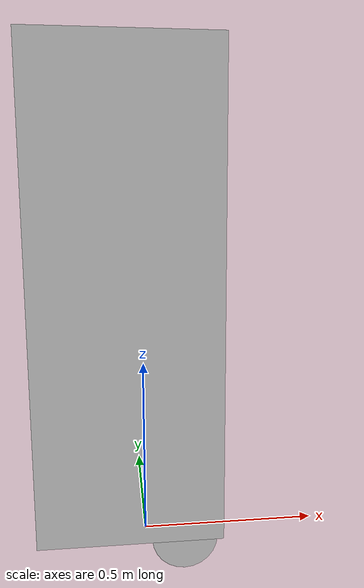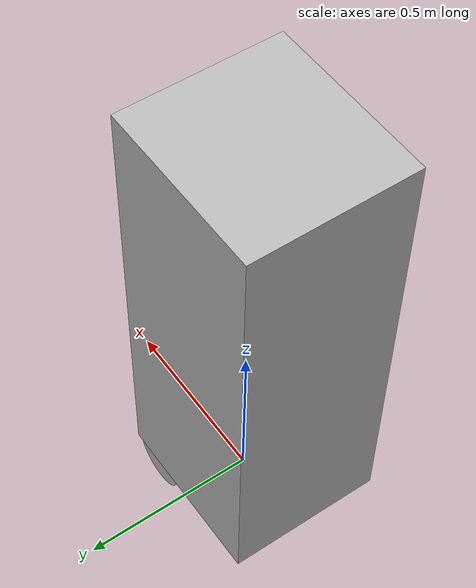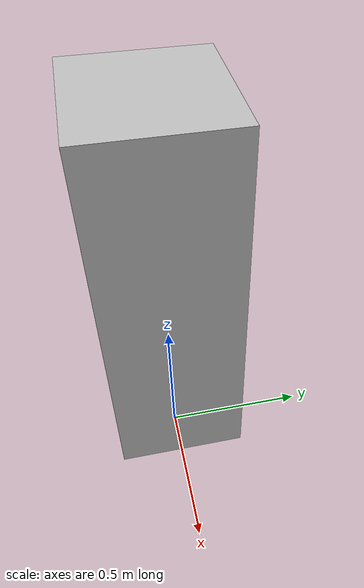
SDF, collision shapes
<sdf version='1.11'>
  <model name='sitoe_robot'>
    <link name='base_footprint'>
      <inertial>
        <pose>-0.0039948586118251656 0.10122107969151679 0.054970179948586127 0 0 0</pose>
        <mass>15.56</mass>
        <inertia>
          <ixx>0.54770769354102389</ixx>
          <ixy>-0.0062919023136241798</ixy>
          <ixz>-0.0010486503856041141</ixz>
          <iyy>2.3240014711438519</iyy>
          <iyz>-0.00099196658097683299</iyz>
          <izz>2.2808786229745501</izz>
        </inertia>
      </inertial>
      <collision name='base_footprint_fixed_joint_lump__base_link_collision'>
        <pose>-0.045434099999999998 6.9388939039072284e-18 0.71347000000000005 1.5707963267948959 -5.5511151231257827e-17 1.5707963267948959</pose>
        <geometry>
          <box>
            <size>0.44369999999999998 1.2714000000000001 0.48580000000000001</size>
          </box>
        </geometry>
      </collision>
      <collision name='base_footprint_fixed_joint_lump__caster_wheel_link_collision_1'>
        <pose>-0.13300000000000001 2.775557561562891e-17 0.0407 0 0 0</pose>
        <geometry>
          <sphere>
            <radius>0.050799999999999998</radius>
          </sphere>
        </geometry>
      </collision>
      <collision name='base_footprint_fixed_joint_lump__lidar_link_collision_2'>
        <pose>-0.021000000000000001 3.4694469519536142e-18 0.058749999999999997 0 0 0</pose>
        <geometry>
          <cylinder>
            <length>0.041300000000000003</length>
            <radius>0.027799999999999998</radius>
          </cylinder>
        </geometry>
        <surface>
          <contact>
            <ode/>
          </contact>
          <friction>
            <ode/>
          </friction>
        </surface>
      </collision>
      <visual name='base_footprint_fixed_joint_lump__base_link_visual'>
        <pose>0 0 0.038100000000000002 1.5707963267948959 -5.5511151231257827e-17 1.5707963267948959</pose>
        <geometry>
          <mesh>
            <scale>1 1 1</scale>
            <uri>model://parc_robot_description/meshes/sitoe_chassis.dae</uri>
          </mesh>
        </geometry>
      </visual>
      <visual name='base_footprint_fixed_joint_lump__bottom_camera_link_visual_1'>
        <pose>-0.0009486372867090892 5.5619571448506377e-17 0.03811100016133815 1.5707963267948957 0 1.570796326794897</pose>
        <geometry>
          <mesh>
            <scale>1 1 1</scale>
            <uri>model://parc_robot_description/meshes/realsense_d435_bottom.dae</uri>
          </mesh>
        </geometry>
      </visual>
      <visual name='base_footprint_fixed_joint_lump__caster_wheel_link_visual_2'>
        <pose>6.1629758220391547e-33 2.775557561562891e-17 0.038100000000000002 1.5707963267948959 -5.5511151231257827e-17 1.5707963267948959</pose>
        <geometry>
          <mesh>
            <scale>1 1 1</scale>
            <uri>model://parc_robot_description/meshes/caster_wheel.dae</uri>
          </mesh>
        </geometry>
      </visual>
      <visual name='base_footprint_fixed_joint_lump__lidar_link_visual_3'>
        <pose>-0.021000000000000001 -0.021000000000000001 0.038100000000000002 1.5707963267948959 0 0</pose>
        <geometry>
          <mesh>
            <scale>1 1 1</scale>
            <uri>model://parc_robot_description/meshes/rplidarc1.dae</uri>
          </mesh>
        </geometry>
      </visual>
      <visual name='base_footprint_fixed_joint_lump__top_camera_link_visual_4'>
        <pose>-6.9388939039072253e-18 1.387778780781446e-17 0.038100000000000002 1.5707963267948959 -5.5511151231257827e-17 1.5707963267948959</pose>
        <geometry>
          <mesh>
            <scale>1 1 1</scale>
            <uri>model://parc_robot_description/meshes/realsense_d435_top.dae</uri>
          </mesh>
        </geometry>
      </visual>
      <sensor name='imu_sensor' type='imu'>
        <always_on>true</always_on>
        <update_rate>100</update_rate>
        <visualize>true</visualize>
        <topic>imu</topic>
        <imu>
          <angular_velocity>
            <x>
              <noise type='gaussian'>
                <mean>0</mean>
                <stddev>0.00020000000000000001</stddev>
              </noise>
            </x>
            <y>
              <noise type='gaussian'>
                <mean>0</mean>
                <stddev>0.00020000000000000001</stddev>
              </noise>
            </y>
            <z>
              <noise type='gaussian'>
                <mean>0</mean>
                <stddev>0.00020000000000000001</stddev>
              </noise>
            </z>
          </angular_velocity>
          <linear_acceleration>
            <x>
              <noise type='gaussian'>
                <mean>0</mean>
                <stddev>0.017000000000000001</stddev>
              </noise>
            </x>
            <y>
              <noise type='gaussian'>
                <mean>0</mean>
                <stddev>0.017000000000000001</stddev>
              </noise>
            </y>
            <z>
              <noise type='gaussian'>
                <mean>0</mean>
                <stddev>0.017000000000000001</stddev>
              </noise>
            </z>
          </linear_acceleration>
          <orientation>
            <x>
              <noise type='gaussian'>
                <mean>0.0</mean>
                <stddev>2e-3</stddev>
              </noise>
            </x>
            <y>
              <noise type='gaussian'>
                <mean>0.0</mean>
                <stddev>2e-3</stddev>
              </noise>
            </y>
            <z>
              <noise type='gaussian'>
                <mean>0.0</mean>
                <stddev>2e-3</stddev>
              </noise>
            </z>
          </orientation>
        </imu>
        <pose>0.02 -3.4694499999999997e-18 0.092100000000000001 0 0 -3.6732099999999997e-06</pose>
        <gravity>true</gravity>
        <gz_frame_id>imu_link</gz_frame_id>
      </sensor>
      <sensor name='rplidar_c1' type='gpu_lidar'>
        <always_on>true</always_on>
        <visualize>false</visualize>
        <update_rate>10</update_rate>
        <topic>scan</topic>
        <ray>
          <scan>
            <horizontal>
              <samples>360</samples>
              <min_angle>-3.1400000000000001</min_angle>
              <max_angle>3.1400000000000001</max_angle>
              <resolution>1</resolution>
            </horizontal>
          </scan>
          <range>
            <min>0.050000000000000003</min>
            <max>12</max>
            <resolution>0.014999999999999999</resolution>
          </range>
          <noise>
            <type>gaussian</type>
            <mean>0</mean>
            <stddev>0.01</stddev>
          </noise>
        </ray>
        <pose>-0.021000000000000001 3.4694499999999997e-18 0.038100000000000002 0 0 -3.6732099999999997e-06</pose>
        <gz_frame_id>lidar_link</gz_frame_id>
      </sensor>
    </link>
    <joint name='left_wheel_joint' type='revolute'>
      <pose relative_to='base_footprint'>0.095000000000000057 0.19649 0.085699999999999998 1.5707963267948957 -1.5707963267948966 0</pose>
      <parent>base_footprint</parent>
      <child>left_wheel_link</child>
      <axis>
        <xyz>0 0 -1</xyz>
        <limit>
          <lower>-inf</lower>
          <upper>inf</upper>
        </limit>
        <dynamics>
          <spring_reference>0</spring_reference>
          <spring_stiffness>0</spring_stiffness>
        </dynamics>
      </axis>
    </joint>
    <link name='left_wheel_link'>
      <pose relative_to='left_wheel_joint'>0 0 0 0 0 0</pose>
      <inertial>
        <pose>0 0 0 0 0 0</pose>
        <mass>2.2000000000000002</mass>
        <inertia>
          <ixx>0.0044324793333333336</ixx>
          <ixy>0</ixy>
          <ixz>0</ixz>
          <iyy>0.0044324793333333336</iyy>
          <iyz>0</iyz>
          <izz>0.0081355999999999998</izz>
        </inertia>
      </inertial>
      <collision name='left_wheel_link_collision'>
        <pose>0 0 0 0 0 0</pose>
        <geometry>
          <cylinder>
            <length>0.044600000000000001</length>
            <radius>0.085999999999999993</radius>
          </cylinder>
        </geometry>
      </collision>
      <visual name='left_wheel_link_visual'>
        <pose>-0.0935 -0.043999999999999997 0.19650000000000001 0 1.5707963267948966 0</pose>
        <geometry>
          <mesh>
            <scale>1 1 1</scale>
            <uri>model://parc_robot_description/meshes/left_wheel.dae</uri>
          </mesh>
        </geometry>
      </visual>
    </link>
    <joint name='right_wheel_joint' type='revolute'>
      <pose relative_to='base_footprint'>0.094499999999999973 -0.19649 0.085699999999999998 -1.5707963267948957 1.5707963267948966 0</pose>
      <parent>base_footprint</parent>
      <child>right_wheel_link</child>
      <axis>
        <xyz>0 0 1</xyz>
        <limit>
          <lower>-inf</lower>
          <upper>inf</upper>
        </limit>
        <dynamics>
          <spring_reference>0</spring_reference>
          <spring_stiffness>0</spring_stiffness>
        </dynamics>
      </axis>
    </joint>
    <link name='right_wheel_link'>
      <pose relative_to='right_wheel_joint'>0 0 0 0 0 0</pose>
      <inertial>
        <pose>0 0 0 0 0 0</pose>
        <mass>2.2000000000000002</mass>
        <inertia>
          <ixx>0.0044324793333333336</ixx>
          <ixy>0</ixy>
          <ixz>0</ixz>
          <iyy>0.0044324793333333336</iyy>
          <iyz>0</iyz>
          <izz>0.0081355999999999998</izz>
        </inertia>
      </inertial>
      <collision name='right_wheel_link_collision'>
        <pose>0 0 0 0 0 0</pose>
        <geometry>
          <cylinder>
            <length>0.044600000000000001</length>
            <radius>0.085999999999999993</radius>
          </cylinder>
        </geometry>
      </collision>
      <visual name='right_wheel_link_visual'>
        <pose>0.095600000000000004 -0.043499999999999997 0.19650000000000001 0 -1.5707963267948966 0</pose>
        <geometry>
          <mesh>
            <scale>1 1 1</scale>
            <uri>model://parc_robot_description/meshes/right_wheel.dae</uri>
          </mesh>
        </geometry>
      </visual>
    </link>
    <plugin name='gz::sim::systems::DiffDrive' filename='gz-sim-diff-drive-system'>
      <topic>/cmd_vel</topic>
      <left_joint>left_wheel_joint</left_joint>
      <right_joint>right_wheel_joint</right_joint>
      <wheel_separation>0.3409</wheel_separation>
      <wheel_radius>0.08565</wheel_radius>
      <max_velocity>1.0</max_velocity>
      <max_linear_acceleration>1</max_linear_acceleration>
      <min_linear_acceleration>-1</min_linear_acceleration>
      <max_angular_acceleration>2</max_angular_acceleration>
      <min_angular_acceleration>-2</min_angular_acceleration>
      <max_linear_velocity>1.5</max_linear_velocity>
      <min_linear_velocity>-1.5</min_linear_velocity>
      <max_angular_velocity>1</max_angular_velocity>
      <min_angular_velocity>-1</min_angular_velocity>
      <odom_topic>odom</odom_topic>
      <tf_topic>tf</tf_topic>
      <frame_id>odom</frame_id>
      <child_frame_id>base_footprint</child_frame_id>
      <odom_publish_frequency>30</odom_publish_frequency>
    </plugin>
    <plugin name='gz::sim::systems::JointStatePublisher' filename='gz-sim-joint-state-publisher-system'>
      <topic>joint_states</topic>
      <joint_name>left_wheel_joint</joint_name>
      <joint_name>right_wheel_joint</joint_name>
    </plugin>
    <plugin name='gz::sim::systems::PosePublisher' filename='gz-sim-pose-publisher-system'>
      <publish_link_pose>false</publish_link_pose>
      <publish_model_pose>true</publish_model_pose>
      <publish_nested_model_pose>false</publish_nested_model_pose>
      <use_pose_vector_msg>false</use_pose_vector_msg>
      <update_frequency>10</update_frequency>
    </plugin>
    <frame name='bottom_camera_color_optical_joint' attached_to='bottom_camera_color_frame'>
      <pose>0 0 0 -1.5707963267948959 -5.5511151231257827e-17 -1.5707963267948959</pose>
    </frame>
    <frame name='bottom_camera_color_optical_frame' attached_to='bottom_camera_color_optical_joint'>
      <pose>0 0 0 0 0 0</pose>
    </frame>
    <frame name='bottom_camera_color_joint' attached_to='bottom_camera_link'>
      <pose>0 0.014999999999999999 0 0 0 0</pose>
    </frame>
    <frame name='bottom_camera_color_frame' attached_to='bottom_camera_color_joint'>
      <pose>0 0 0 0 0 0</pose>
    </frame>
    <frame name='bottom_camera_depth_joint' attached_to='bottom_camera_link'>
      <pose>0 0 0 -1.5707963267948959 -5.5511151231257827e-17 -1.5707963267948959</pose>
    </frame>
    <frame name='bottom_camera_depth_optical_frame' attached_to='bottom_camera_depth_joint'>
      <pose>0 0 0 0 0 0</pose>
    </frame>
    <frame name='bottom_camera_infra1_optical_joint' attached_to='bottom_camera_infra1_frame'>
      <pose>0 0 0 -1.5707963267948959 -5.5511151231257827e-17 -1.5707963267948959</pose>
    </frame>
    <frame name='bottom_camera_infra1_optical_frame' attached_to='bottom_camera_infra1_optical_joint'>
      <pose>0 0 0 0 0 0</pose>
    </frame>
    <frame name='bottom_camera_infra1_joint' attached_to='bottom_camera_link'>
      <pose>0 0 0 0 0 0</pose>
    </frame>
    <frame name='bottom_camera_infra1_frame' attached_to='bottom_camera_infra1_joint'>
      <pose>0 0 0 0 0 0</pose>
    </frame>
    <frame name='bottom_camera_infra2_optical_joint' attached_to='bottom_camera_infra2_frame'>
      <pose>0 0 0 -1.5707963267948959 -5.5511151231257827e-17 -1.5707963267948959</pose>
    </frame>
    <frame name='bottom_camera_infra2_optical_frame' attached_to='bottom_camera_infra2_optical_joint'>
      <pose>0 0 0 0 0 0</pose>
    </frame>
    <frame name='bottom_camera_infra2_joint' attached_to='bottom_camera_link'>
      <pose>0 -0.050000000000000003 0 0 0 0</pose>
    </frame>
    <frame name='bottom_camera_infra2_frame' attached_to='bottom_camera_infra2_joint'>
      <pose>0 0 0 0 0 0</pose>
    </frame>
    <frame name='bottom_camera_joint' attached_to='base_link'>
      <pose>0 -0.076999999999999999 0.54500000000000004 2.2204460492503141e-16 1.0471975511965979 -1.5707963267948957</pose>
    </frame>
    <frame name='bottom_camera_link' attached_to='bottom_camera_joint'>
      <pose>0 0 0 0 0 0</pose>
    </frame>
    <frame name='caster_wheel_joint' attached_to='base_link'>
      <pose>0 0.13300000000000001 0 0 0 -1.5707963267948959</pose>
    </frame>
    <frame name='caster_wheel_link' attached_to='caster_wheel_joint'>
      <pose>0 0 0 0 0 0</pose>
    </frame>
    <frame name='imu_joint' attached_to='base_link'>
      <pose>0 -0.02 0.053999999999999999 0 0 -1.5707963267948959</pose>
    </frame>
    <frame name='imu_link' attached_to='imu_joint'>
      <pose>0 0 0 0 0 0</pose>
    </frame>
    <frame name='lidar_joint' attached_to='base_link'>
      <pose>0 0.021000000000000001 0 0 0 -1.5707963267948959</pose>
    </frame>
    <frame name='lidar_link' attached_to='lidar_joint'>
      <pose>0 0 0 0 0 0</pose>
    </frame>
    <frame name='top_camera_color_optical_joint' attached_to='top_camera_color_frame'>
      <pose>0 0 0 -1.5707963267948959 -5.5511151231257827e-17 -1.5707963267948959</pose>
    </frame>
    <frame name='top_camera_color_optical_frame' attached_to='top_camera_color_optical_joint'>
      <pose>0 0 0 0 0 0</pose>
    </frame>
    <frame name='top_camera_color_joint' attached_to='top_camera_link'>
      <pose>0 0.014999999999999999 0 0 0 0</pose>
    </frame>
    <frame name='top_camera_color_frame' attached_to='top_camera_color_joint'>
      <pose>0 0 0 0 0 0</pose>
    </frame>
    <frame name='top_camera_depth_joint' attached_to='top_camera_link'>
      <pose>0 0 0 -1.5707963267948959 -5.5511151231257827e-17 -1.5707963267948959</pose>
    </frame>
    <frame name='top_camera_depth_optical_frame' attached_to='top_camera_depth_joint'>
      <pose>0 0 0 0 0 0</pose>
    </frame>
    <frame name='top_camera_infra1_optical_joint' attached_to='top_camera_infra1_frame'>
      <pose>0 0 0 -1.5707963267948959 -5.5511151231257827e-17 -1.5707963267948959</pose>
    </frame>
    <frame name='top_camera_infra1_optical_frame' attached_to='top_camera_infra1_optical_joint'>
      <pose>0 0 0 0 0 0</pose>
    </frame>
    <frame name='top_camera_infra1_joint' attached_to='top_camera_link'>
      <pose>0 0 0 0 0 0</pose>
    </frame>
    <frame name='top_camera_infra1_frame' attached_to='top_camera_infra1_joint'>
      <pose>0 0 0 0 0 0</pose>
    </frame>
    <frame name='top_camera_infra2_optical_joint' attached_to='top_camera_infra2_frame'>
      <pose>0 0 0 -1.5707963267948959 -5.5511151231257827e-17 -1.5707963267948959</pose>
    </frame>
    <frame name='top_camera_infra2_optical_frame' attached_to='top_camera_infra2_optical_joint'>
      <pose>0 0 0 0 0 0</pose>
    </frame>
    <frame name='top_camera_infra2_joint' attached_to='top_camera_link'>
      <pose>0 -0.050000000000000003 0 0 0 0</pose>
    </frame>
    <frame name='top_camera_infra2_frame' attached_to='top_camera_infra2_joint'>
      <pose>0 0 0 0 0 0</pose>
    </frame>
    <frame name='top_camera_joint' attached_to='base_link'>
      <pose>0 0.052499999999999998 0.97450000000000003 0 0 -1.5707963267948959</pose>
    </frame>
    <frame name='top_camera_link' attached_to='top_camera_joint'>
      <pose>0 0 0 0 0 0</pose>
    </frame>
    <frame name='base_joint' attached_to='base_footprint'>
      <pose>0 0 0.038100000000000002 0 0 1.5707963267948959</pose>
    </frame>
    <frame name='base_link' attached_to='base_joint'>
      <pose>0 0 0 0 0 0</pose>
    </frame>
  </model>
</sdf>
